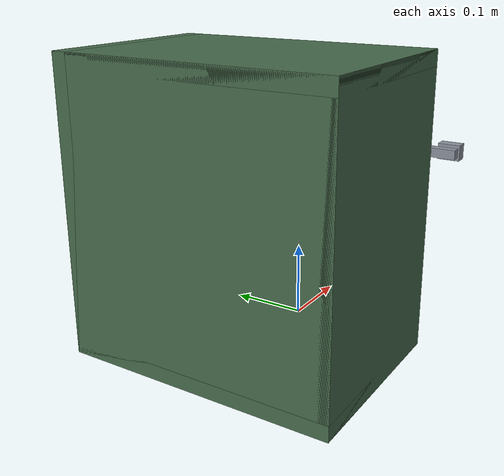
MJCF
<mujoco model="door_latch">
  <compiler angle="radian" autolimits="true"/>

  <asset>
    <material name="carcass" rgba="0.28 0.42 0.30 1"/>
    <material name="doorface" rgba="0.16 0.55 0.30 1"/>
    <material name="lever" rgba="1 0.45 0 0.9"/>
    <material name="steel" rgba="0.55 0.58 0.62 1"/>
  </asset>

  <worldbody>
    <body name="root">
      <!-- carcass: interior 0.32 wide x 0.36 tall, 0.24 deep, opening on the +x face -->
      <geom name="carcass_bottom" type="box" pos="-0.125 0 0.010" size="0.125 0.180 0.010" material="carcass"/>
      <geom name="carcass_top"    type="box" pos="-0.125 0 0.370" size="0.125 0.180 0.010" material="carcass"/>
      <geom name="carcass_left"   type="box" pos="-0.125 0.170 0.190" size="0.125 0.010 0.190" material="carcass"/>
      <geom name="carcass_right"  type="box" pos="-0.125 -0.170 0.190" size="0.125 0.010 0.190" material="carcass"/>
      <geom name="carcass_back"   type="box" pos="-0.245 0 0.190" size="0.005 0.180 0.190" material="carcass"/>
      <!-- strike lip: catches the bolt in front until the lever swings it clear -->
      <geom name="strike_lip" type="box" pos="0.058 -0.185 0.2475" size="0.008 0.014 0.010" material="steel" friction="0.4 0.02 0.001"/>

      <!-- door: hinged on the left vertical edge, swings toward the robot for +angle -->
      <body name="door" pos="0.012 0.170 0.190">
        <joint name="door_hinge" type="hinge" axis="0 0 1" range="-0.02 2.0" damping="0.6"/>
        <inertial pos="0 -0.16 0" mass="1.2" diaginertia="0.02 0.02 0.02"/>
        <geom name="door_panel" type="box" pos="0 -0.160 0" size="0.008 0.160 0.185" material="doorface" friction="0.6 0.02 0.001"/>

        <!-- lever: spring-returned hinge about the door-face normal; bar toward the hinge
             side, bolt on the far side of the pivot reaching past the door edge -->
        <body name="lever" pos="0.020 -0.280 0.0575">
          <joint name="lever_hinge" type="hinge" axis="1 0 0" range="-0.9 0.05" stiffness="0.15" damping="0.02"/>
          <inertial pos="0.02 0 0" mass="0.10" diaginertia="0.0002 0.0002 0.0002"/>
          <geom name="lever_post" type="capsule" fromto="0.004 0 0  0.030 0 0" size="0.006" material="lever" friction="1.2 0.05 0.005"/>
          <geom name="lever_bar"  type="capsule" fromto="0.030 0 0  0.030 0.096 0" size="0.009" material="lever" friction="1.2 0.05 0.005"/>
          <geom name="latch_bolt" type="box" pos="0.012 -0.055 0" size="0.006 0.032 0.006" material="steel" friction="0.4 0.02 0.001"/>
        </body>
      </body>
    </body>
  </worldbody>
</mujoco>
